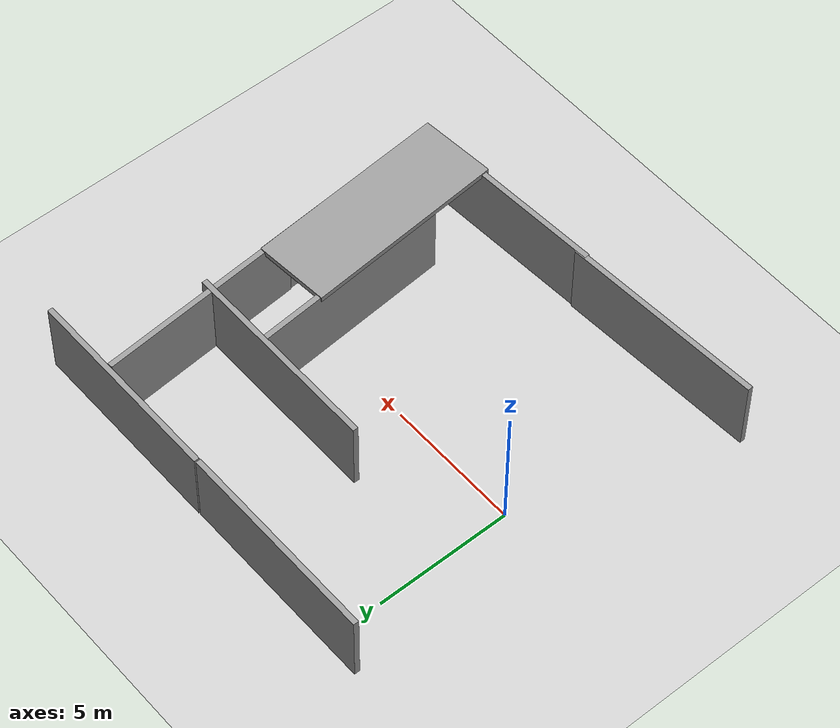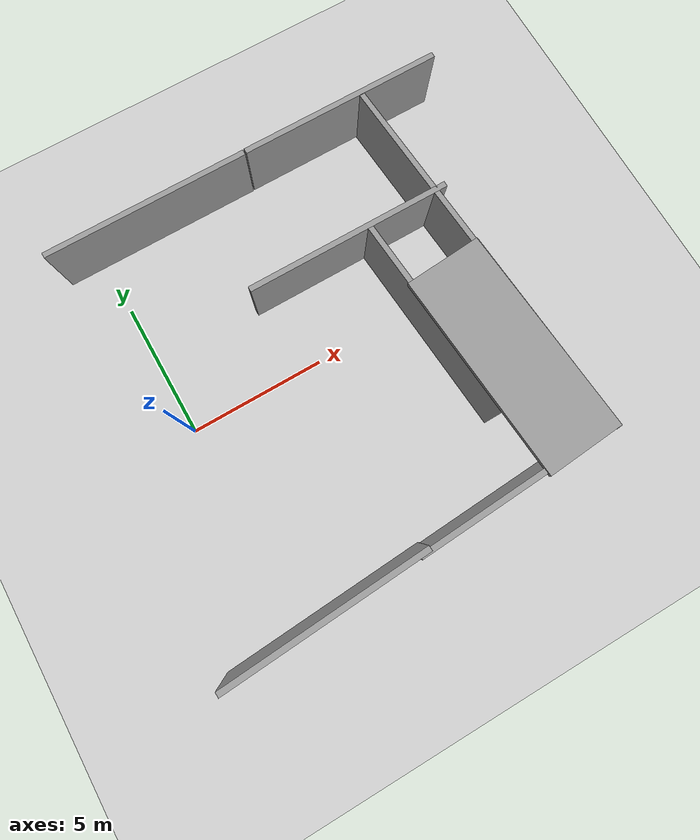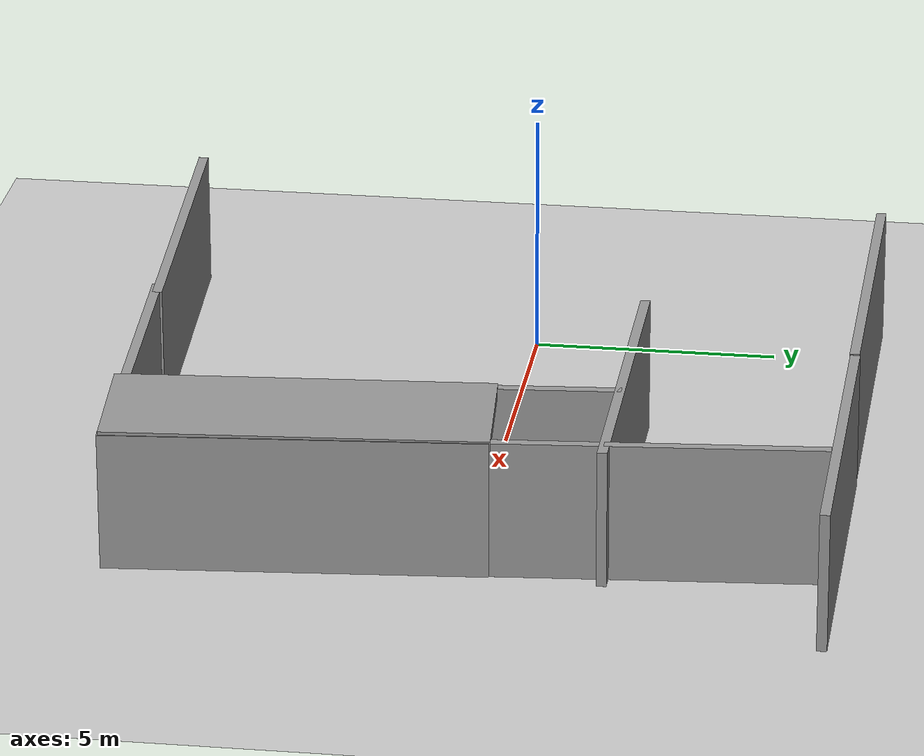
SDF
<sdf version="1.6">
 <world name="default">
  <light name="sun" type="directional">
   <pose>0 0 10 0 -0 0</pose>
   <diffuse>0.8 0.8 0.8 1</diffuse>
   <specular>0.2 0.2 0.2 1</specular>
   <attenuation>
    <range>1000</range>
    <constant>0.9</constant>
    <linear>0.01</linear>
    <quadratic>0.001</quadratic>
   </attenuation>
   <direction>-0.5 0.1 -0.9</direction>
  </light>
  <model name="ground_plane">
   <static>1</static>
   <link name="link">
    <collision name="collision">
     <geometry><plane><normal>0 0 1</normal><size>100 100</size></plane></geometry>
     <surface><friction><ode><mu>100</mu><mu2>50</mu2></ode></friction></surface>
    </collision>
    <visual name="visual">
     <cast_shadows>0</cast_shadows>
     <geometry><plane><normal>0 0 1</normal><size>100 100</size></plane></geometry>
     <material>
      <script><uri>file://media/materials/scripts/gazebo.material</uri><name>Gazebo/Grey</name></script>
     </material>
    </visual>
    <velocity_decay><linear>0</linear><angular>0</angular></velocity_decay>
   </link>
  </model>
  <physics name="default_physics" default="0" type="ode">
   <max_step_size>0.001</max_step_size>
   <real_time_factor>1</real_time_factor>
   <real_time_update_rate>1000</real_time_update_rate>
  </physics>
  <scene><ambient>0.4 0.4 0.4 1</ambient><background>0.7 0.7 0.7 1</background><shadows>1</shadows></scene>
  <model name="grey_wall">
   <static>1</static>
   <link name="link">
    <pose>0 0 1.4 0 -0 0</pose>
    <collision name="collision"><geometry><box><size>7.5 0.2 2.8</size></box></geometry></collision>
    <visual name="visual">
     <cast_shadows>0</cast_shadows>
     <geometry><box><size>7.5 0.2 2.8</size></box></geometry>
     <material>
      <script>
       <uri>model://grey_wall/materials/scripts</uri>
       <uri>model://grey_wall/materials/textures</uri>
       <name>vrc/grey_wall</name>
      </script>
     </material>
    </visual>
    <velocity_decay><linear>0</linear><angular>0</angular></velocity_decay>
   </link>
   <pose>9.9002 7.09699 0 0 -0 0</pose>
  </model>
  <gravity>0 0 -9.8</gravity>
  <magnetic_field>6e-06 2.3e-05 -4.2e-05</magnetic_field>
  <atmosphere type="adiabatic"/>
  <spherical_coordinates>
   <surface_model>EARTH_WGS84</surface_model>
   <latitude_deg>0</latitude_deg>
   <longitude_deg>0</longitude_deg>
   <elevation>0</elevation>
   <heading_deg>0</heading_deg>
  </spherical_coordinates>
  <model name="grey_wall_clone">
   <static>1</static>
   <link name="link">
    <pose>0 0 1.4 0 -0 0</pose>
    <collision name="collision"><geometry><box><size>7.5 0.2 2.8</size></box></geometry></collision>
    <visual name="visual">
     <cast_shadows>0</cast_shadows>
     <geometry><box><size>7.5 0.2 2.8</size></box></geometry>
     <material>
      <script>
       <uri>model://grey_wall/materials/scripts</uri>
       <uri>model://grey_wall/materials/textures</uri>
       <name>vrc/grey_wall</name>
      </script>
     </material>
    </visual>
    <velocity_decay><linear>0</linear><angular>0</angular></velocity_decay>
   </link>
   <pose>10.984 3.24141 0 0 -0 1.64938</pose>
  </model>
  <model name="grey_wall_clone_0">
   <static>1</static>
   <link name="link">
    <pose>0 0 1.4 0 -0 0</pose>
    <collision name="collision"><geometry><box><size>7.5 0.2 2.8</size></box></geometry></collision>
    <visual name="visual">
     <cast_shadows>0</cast_shadows>
     <geometry><box><size>7.5 0.2 2.8</size></box></geometry>
     <material>
      <script>
       <uri>model://grey_wall/materials/scripts</uri>
       <uri>model://grey_wall/materials/textures</uri>
       <name>vrc/grey_wall</name>
      </script>
     </material>
    </visual>
    <velocity_decay><linear>0</linear><angular>0</angular></velocity_decay>
   </link>
   <pose>2.34917 7.08187 0 0 -0 0</pose>
  </model>
  <model name="grey_wall_clone_1">
   <static>1</static>
   <link name="link">
    <pose>0 0 1.4 0 -0 0</pose>
    <collision name="collision"><geometry><box><size>7.5 0.2 2.8</size></box></geometry></collision>
    <visual name="visual">
     <cast_shadows>0</cast_shadows>
     <geometry><box><size>7.5 0.2 2.8</size></box></geometry>
     <material>
      <script>
       <uri>model://grey_wall/materials/scripts</uri>
       <uri>model://grey_wall/materials/textures</uri>
       <name>vrc/grey_wall</name>
      </script>
     </material>
    </visual>
    <velocity_decay><linear>0</linear><angular>0</angular></velocity_decay>
   </link>
   <pose>8.80622 -3.42242 2.74238 -1.56857 -0.004708 -1.49084</pose>
  </model>
  <model name="grey_wall_clone_clone">
   <static>1</static>
   <link name="link">
    <pose>0 0 1.4 0 -0 0</pose>
    <collision name="collision"><geometry><box><size>7.5 0.2 2.8</size></box></geometry></collision>
    <visual name="visual">
     <cast_shadows>0</cast_shadows>
     <geometry><box><size>7.5 0.2 2.8</size></box></geometry>
     <material>
      <script>
       <uri>model://grey_wall/materials/scripts</uri>
       <uri>model://grey_wall/materials/textures</uri>
       <name>vrc/grey_wall</name>
      </script>
     </material>
    </visual>
    <velocity_decay><linear>0</linear><angular>0</angular></velocity_decay>
   </link>
   <pose>8.73999 -1.01226 0 0 -0 1.64938</pose>
  </model>
  <model name="grey_wall_clone_2">
   <static>1</static>
   <link name="link">
    <pose>0 0 1.4 0 -0 0</pose>
    <collision name="collision"><geometry><box><size>7.5 0.2 2.8</size></box></geometry></collision>
    <visual name="visual">
     <cast_shadows>0</cast_shadows>
     <geometry><box><size>7.5 0.2 2.8</size></box></geometry>
     <material>
      <script>
       <uri>model://grey_wall/materials/scripts</uri>
       <uri>model://grey_wall/materials/textures</uri>
       <name>vrc/grey_wall</name>
      </script>
     </material>
    </visual>
    <velocity_decay><linear>0</linear><angular>0</angular></velocity_decay>
   </link>
   <pose>7.68921 2.69759 0 0 -0 0</pose>
  </model>
  <model name="grey_wall_clone_clone_0">
   <static>1</static>
   <link name="link">
    <pose>0 0 1.4 0 -0 0</pose>
    <collision name="collision"><geometry><box><size>7.5 0.2 2.8</size></box></geometry></collision>
    <visual name="visual">
     <cast_shadows>0</cast_shadows>
     <geometry><box><size>7.5 0.2 2.8</size></box></geometry>
     <material>
      <script>
       <uri>model://grey_wall/materials/scripts</uri>
       <uri>model://grey_wall/materials/textures</uri>
       <name>vrc/grey_wall</name>
      </script>
     </material>
    </visual>
    <velocity_decay><linear>0</linear><angular>0</angular></velocity_decay>
   </link>
   <pose>11.5239 -3.2263 0 0 -0 1.64938</pose>
  </model>
  <model name="grey_wall_clone_2_clone">
   <static>1</static>
   <link name="link">
    <pose>0 0 1.4 0 -0 0</pose>
    <collision name="collision"><geometry><box><size>7.5 0.2 2.8</size></box></geometry></collision>
    <visual name="visual">
     <cast_shadows>0</cast_shadows>
     <geometry><box><size>7.5 0.2 2.8</size></box></geometry>
     <material>
      <script>
       <uri>model://grey_wall/materials/scripts</uri>
       <uri>model://grey_wall/materials/textures</uri>
       <name>vrc/grey_wall</name>
      </script>
     </material>
    </visual>
    <velocity_decay><linear>0</linear><angular>0</angular></velocity_decay>
   </link>
   <pose>8.14959 -7.00704 0 0 -0 0.057579</pose>
  </model>
  <model name="grey_wall_clone_2_clone_clone">
   <static>1</static>
   <link name="link">
    <pose>0 0 1.4 0 -0 0</pose>
    <collision name="collision"><geometry><box><size>7.5 0.2 2.8</size></box></geometry></collision>
    <visual name="visual">
     <cast_shadows>0</cast_shadows>
     <geometry><box><size>7.5 0.2 2.8</size></box></geometry>
     <material>
      <script>
       <uri>model://grey_wall/materials/scripts</uri>
       <uri>model://grey_wall/materials/textures</uri>
       <name>vrc/grey_wall</name>
      </script>
     </material>
    </visual>
    <velocity_decay><linear>0</linear><angular>0</angular></velocity_decay>
   </link>
   <pose>1.06365 -7.3664 0 0 -0 0.057579</pose>
  </model>
 </world>
</sdf>
